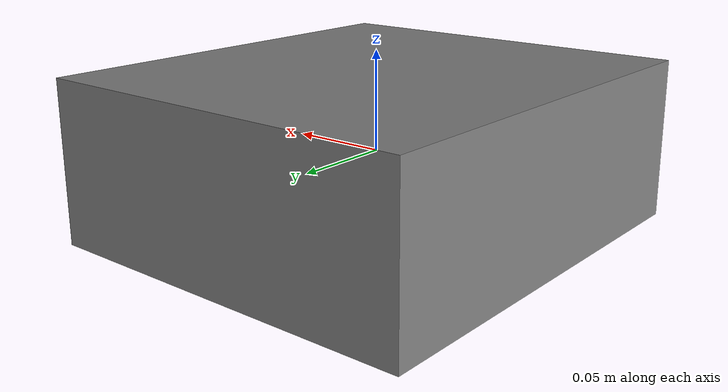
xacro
<?xml version="1.0"?>
<robot name="agv_robot" xmlns:xacro="http://ros.org/wiki/xacro">

  <!-- Base Link -->
  <link name="base_link">
    <visual>
      <geometry>
        <box size="0.20 0.22 0.082"/> <!-- 가로 x 세로 x 높이 (단위: m) -->
      </geometry>
      <material name="gray">
        <color rgba="0.5 0.5 0.5 1.0"/>
      </material>
    </visual>
    <collision>
      <geometry>
        <box size="0.20 0.22 0.082"/>
      </geometry>
    </collision>
    <inertial>
      <mass value="1.0"/>
      <inertia ixx="0.01" ixy="0.0" ixz="0.0" iyy="0.01" iyz="0.0" izz="0.01"/>
      <origin xyz="0 0 0" rpy="0 0 0"/>
    </inertial>
  </link>

  <!-- IMU 센서 -->
  <link name="imu_link"/>
  <joint name="imu_joint" type="fixed">
    <parent link="base_link"/>
    <child link="imu_link"/>
    <origin xyz="0 0 0" rpy="0 0 0"/> <!-- 정중앙 -->
  </joint>

  <!-- LiDAR 센서 -->
  <link name="base_laser"/>
  <joint name="laser_joint" type="fixed">
    <parent link="base_link"/>
    <child link="base_laser"/>
    <origin xyz="-0.03 0 0.082" rpy="0 0 0"/> <!-- 뒤로 3cm, 위로 8.2cm -->
  </joint>

</robot>
